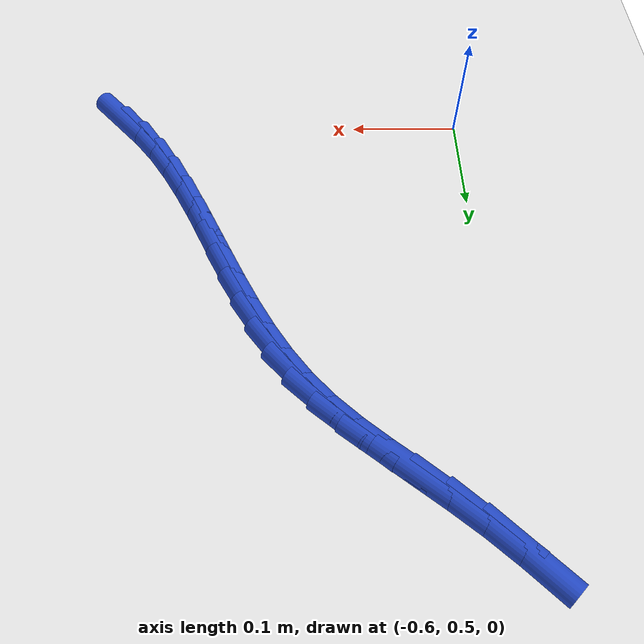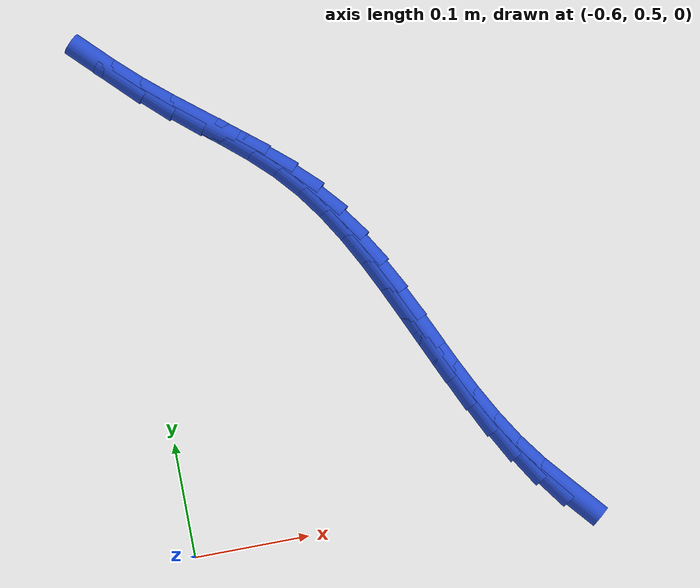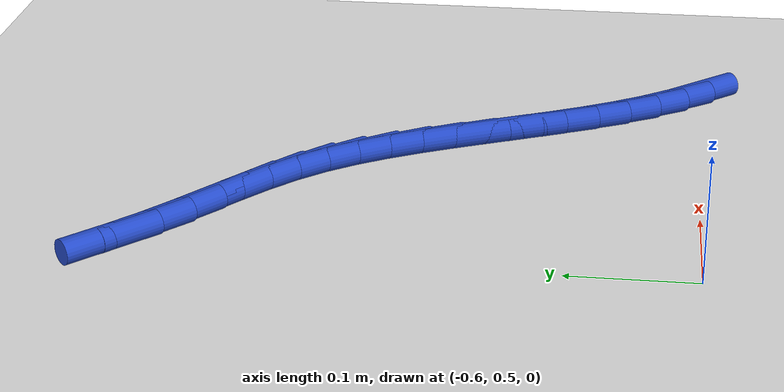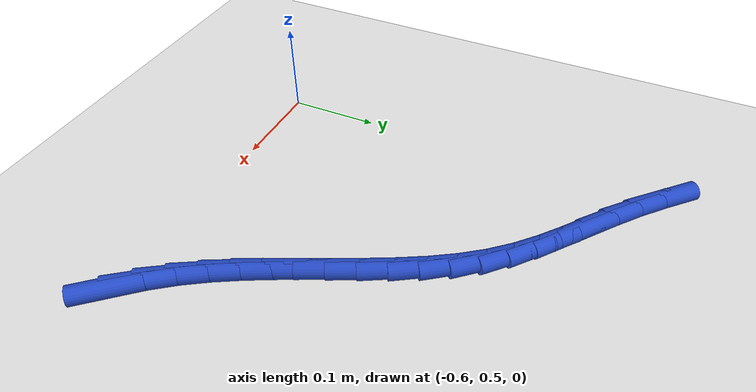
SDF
<sdf version="1.6">
 <world name="default">
  <model name="ground_plane">
   <static>1</static>
   <link name="link">
    <collision name="collision">
     <geometry><plane><normal>0 0 1</normal><size>100 100</size></plane></geometry>
     <surface><friction><ode><mu>100</mu><mu2>50</mu2></ode></friction></surface>
    </collision>
    <visual name="visual">
     <cast_shadows>0</cast_shadows>
     <geometry><plane><normal>0 0 1</normal><size>100 100</size></plane></geometry>
     <material>
      <script><uri>file://media/materials/scripts/gazebo.material</uri><name>Gazebo/WhiteGlow</name></script>
     </material>
    </visual>
   </link>
  </model>
  <model name="line">
   <link name="link_21">
    <pose>-0.2755294166557804 0.49930256309034843 0.01 0 1.57 -0.8636502245459102</pose>
    <collision name="collision">
     <geometry><cylinder><radius>0.01</radius><length>0.08</length></cylinder></geometry>
    </collision>
    <visual name="visual">
     <material>
      <script><name>Gazebo/Blue</name><uri>file://media/materials/scripts/gazebo.material</uri></script>
     </material>
     <geometry><cylinder><radius>0.01</radius><length>0.08</length></cylinder></geometry>
    </visual>
   </link>
   <link name="link_22">
    <pose>-0.2944190673366509 0.5214066195432674 0.01 0 1.57 -0.9412953103915688</pose>
    <collision name="collision">
     <geometry><cylinder><radius>0.01</radius><length>0.08</length></cylinder></geometry>
    </collision>
    <visual name="visual">
     <material>
      <script><name>Gazebo/Blue</name><uri>file://media/materials/scripts/gazebo.material</uri></script>
     </material>
     <geometry><cylinder><radius>0.01</radius><length>0.08</length></cylinder></geometry>
    </visual>
   </link>
   <link name="link_23">
    <pose>-0.3114749705582306 0.5448237753493216 0.01 0 1.57 -1.01484189505734</pose>
    <collision name="collision">
     <geometry><cylinder><radius>0.01</radius><length>0.08</length></cylinder></geometry>
    </collision>
    <visual name="visual">
     <material>
      <script><name>Gazebo/Blue</name><uri>file://media/materials/scripts/gazebo.material</uri></script>
     </material>
     <geometry><cylinder><radius>0.01</radius><length>0.08</length></cylinder></geometry>
    </visual>
   </link>
   <link name="link_24">
    <pose>-0.32678489501437175 0.5694644224144635 0.01 0 1.57 -1.0721115181008116</pose>
    <collision name="collision">
     <geometry><cylinder><radius>0.01</radius><length>0.08</length></cylinder></geometry>
    </collision>
    <visual name="visual">
     <material>
      <script><name>Gazebo/Blue</name><uri>file://media/materials/scripts/gazebo.material</uri></script>
     </material>
     <geometry><cylinder><radius>0.01</radius><length>0.08</length></cylinder></geometry>
    </visual>
   </link>
   <link name="link_25">
    <pose>-0.3407142738504298 0.595041875411718 0.01 0 1.57 -1.1130361572881824</pose>
    <collision name="collision">
     <geometry><cylinder><radius>0.01</radius><length>0.08</length></cylinder></geometry>
    </collision>
    <visual name="visual">
     <material>
      <script><name>Gazebo/Blue</name><uri>file://media/materials/scripts/gazebo.material</uri></script>
     </material>
     <geometry><cylinder><radius>0.01</radius><length>0.08</length></cylinder></geometry>
    </visual>
   </link>
   <link name="link_26">
    <pose>-0.353633777155769 0.6212657320009012 0.01 0 1.57 -1.1379956186312776</pose>
    <collision name="collision">
     <geometry><cylinder><radius>0.01</radius><length>0.08</length></cylinder></geometry>
    </collision>
    <visual name="visual">
     <material>
      <script><name>Gazebo/Blue</name><uri>file://media/materials/scripts/gazebo.material</uri></script>
     </material>
     <geometry><cylinder><radius>0.01</radius><length>0.08</length></cylinder></geometry>
    </visual>
   </link>
   <link name="link_27">
    <pose>-0.36591407501975276 0.6478455898418284 0.01 0 1.57 -1.147277612152728</pose>
    <collision name="collision">
     <geometry><cylinder><radius>0.01</radius><length>0.08</length></cylinder></geometry>
    </collision>
    <visual name="visual">
     <material>
      <script><name>Gazebo/Blue</name><uri>file://media/materials/scripts/gazebo.material</uri></script>
     </material>
     <geometry><cylinder><radius>0.01</radius><length>0.08</length></cylinder></geometry>
    </visual>
   </link>
   <link name="link_28">
    <pose>-0.37792583753174536 0.6744910465943161 0.01 0 1.57 -1.1408954569344043</pose>
    <collision name="collision">
     <geometry><cylinder><radius>0.01</radius><length>0.08</length></cylinder></geometry>
    </collision>
    <visual name="visual">
     <material>
      <script><name>Gazebo/Blue</name><uri>file://media/materials/scripts/gazebo.material</uri></script>
     </material>
     <geometry><cylinder><radius>0.01</radius><length>0.08</length></cylinder></geometry>
    </visual>
   </link>
   <link name="link_29">
    <pose>-0.3900397347811102 0.7009116999181793 0.01 0 1.57 -1.118515785905297</pose>
    <collision name="collision">
     <geometry><cylinder><radius>0.01</radius><length>0.08</length></cylinder></geometry>
    </collision>
    <visual name="visual">
     <material>
      <script><name>Gazebo/Blue</name><uri>file://media/materials/scripts/gazebo.material</uri></script>
     </material>
     <geometry><cylinder><radius>0.01</radius><length>0.08</length></cylinder></geometry>
    </visual>
   </link>
   <link name="link_30">
    <pose>-0.40262643685721144 0.7268171474732343 0.01 0 1.57 -1.0794877167922095</pose>
    <collision name="collision">
     <geometry><cylinder><radius>0.01</radius><length>0.08</length></cylinder></geometry>
    </collision>
    <visual name="visual">
     <material>
      <script><name>Gazebo/Blue</name><uri>file://media/materials/scripts/gazebo.material</uri></script>
     </material>
     <geometry><cylinder><radius>0.01</radius><length>0.08</length></cylinder></geometry>
    </visual>
   </link>
   <link name="link_31">
    <pose>-0.4160566138494127 0.7519169869192968 0.01 0 1.57 -1.022996006503441</pose>
    <collision name="collision">
     <geometry><cylinder><radius>0.01</radius><length>0.08</length></cylinder></geometry>
    </collision>
    <visual name="visual">
     <material>
      <script><name>Gazebo/Blue</name><uri>file://media/materials/scripts/gazebo.material</uri></script>
     </material>
     <geometry><cylinder><radius>0.01</radius><length>0.08</length></cylinder></geometry>
    </visual>
   </link>
   <link name="link_32">
    <pose>-0.43070093584707814 0.7759208159161826 0.01 0 1.57 -0.948388395120563</pose>
    <collision name="collision">
     <geometry><cylinder><radius>0.01</radius><length>0.08</length></cylinder></geometry>
    </collision>
    <visual name="visual">
     <material>
      <script><name>Gazebo/Blue</name><uri>file://media/materials/scripts/gazebo.material</uri></script>
     </material>
     <geometry><cylinder><radius>0.01</radius><length>0.08</length></cylinder></geometry>
    </visual>
   </link>
   <link name="link_33">
    <pose>-0.4469300729395711 0.798538232123707 0.01 0 1.57 -0.8561327929687194</pose>
    <collision name="collision">
     <geometry><cylinder><radius>0.01</radius><length>0.08</length></cylinder></geometry>
    </collision>
    <visual name="visual">
     <material>
      <script><name>Gazebo/Blue</name><uri>file://media/materials/scripts/gazebo.material</uri></script>
     </material>
     <geometry><cylinder><radius>0.01</radius><length>0.08</length></cylinder></geometry>
    </visual>
   </link>
   <link name="link_34">
    <pose>-0.4651066293399603 0.8194869233176152 0.01 0 1.57 -0.7661928640508829</pose>
    <collision name="collision">
     <geometry><cylinder><radius>0.01</radius><length>0.08</length></cylinder></geometry>
    </collision>
    <visual name="visual">
     <material>
      <script><name>Gazebo/Blue</name><uri>file://media/materials/scripts/gazebo.material</uri></script>
     </material>
     <geometry><cylinder><radius>0.01</radius><length>0.08</length></cylinder></geometry>
    </visual>
   </link>
   <link name="link_35">
    <pose>-0.48522850469955414 0.8388503778483706 0.01 0 1.57 -0.7056615643781543</pose>
    <collision name="collision">
     <geometry><cylinder><radius>0.01</radius><length>0.08</length></cylinder></geometry>
    </collision>
    <visual name="visual">
     <material>
      <script><name>Gazebo/Blue</name><uri>file://media/materials/scripts/gazebo.material</uri></script>
     </material>
     <geometry><cylinder><radius>0.01</radius><length>0.08</length></cylinder></geometry>
    </visual>
   </link>
   <link name="link_36">
    <pose>-0.5067879211159138 0.8572192812862633 0.01 0 1.57 -0.6758474805664169</pose>
    <collision name="collision">
     <geometry><cylinder><radius>0.01</radius><length>0.08</length></cylinder></geometry>
    </collision>
    <visual name="visual">
     <material>
      <script><name>Gazebo/Blue</name><uri>file://media/materials/scripts/gazebo.material</uri></script>
     </material>
     <geometry><cylinder><radius>0.01</radius><length>0.08</length></cylinder></geometry>
    </visual>
   </link>
   <link name="link_37">
    <pose>-0.5292398928270186 0.8752216388785128 0.01 0 1.57 -0.6753873899877938</pose>
    <collision name="collision">
     <geometry><cylinder><radius>0.01</radius><length>0.08</length></cylinder></geometry>
    </collision>
    <visual name="visual">
     <material>
      <script><name>Gazebo/Blue</name><uri>file://media/materials/scripts/gazebo.material</uri></script>
     </material>
     <geometry><cylinder><radius>0.01</radius><length>0.08</length></cylinder></geometry>
    </visual>
   </link>
   <link name="link_38">
    <pose>-0.5520394340708475 0.8934854558723373 0.01 0 1.57 -0.702988895995224</pose>
    <collision name="collision">
     <geometry><cylinder><radius>0.01</radius><length>0.08</length></cylinder></geometry>
    </collision>
    <visual name="visual">
     <material>
      <script><name>Gazebo/Blue</name><uri>file://media/materials/scripts/gazebo.material</uri></script>
     </material>
     <geometry><cylinder><radius>0.01</radius><length>0.08</length></cylinder></geometry>
    </visual>
   </link>
   <link name="link_39">
    <pose>-0.5746415590853801 0.9126387375149559 0.01 0 1.57 -0.7503348897162581</pose>
    <collision name="collision">
     <geometry><cylinder><radius>0.01</radius><length>0.08</length></cylinder></geometry>
    </collision>
    <visual name="visual">
     <material>
      <script><name>Gazebo/Blue</name><uri>file://media/materials/scripts/gazebo.material</uri></script>
     </material>
     <geometry><cylinder><radius>0.01</radius><length>0.08</length></cylinder></geometry>
    </visual>
   </link>
   <link name="link_40">
    <pose>-0.5966208691486082 0.9331283379953533 0.01 0 1.57 -0.788460525124303</pose>
    <collision name="collision">
     <geometry><cylinder><radius>0.01</radius><length>0.08</length></cylinder></geometry>
    </collision>
    <visual name="visual">
     <material>
      <script><name>Gazebo/Blue</name><uri>file://media/materials/scripts/gazebo.material</uri></script>
     </material>
     <geometry><cylinder><radius>0.01</radius><length>0.08</length></cylinder></geometry>
    </visual>
   </link>
  </model>
 </world>
</sdf>
